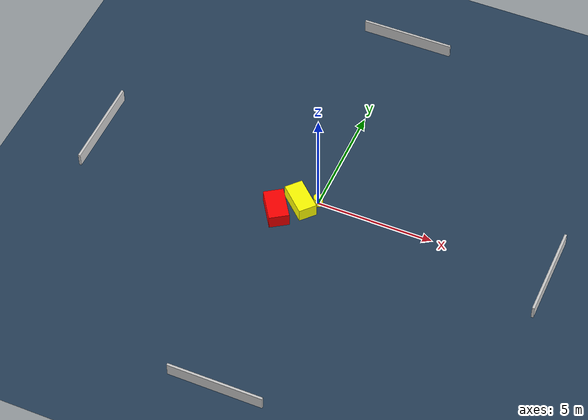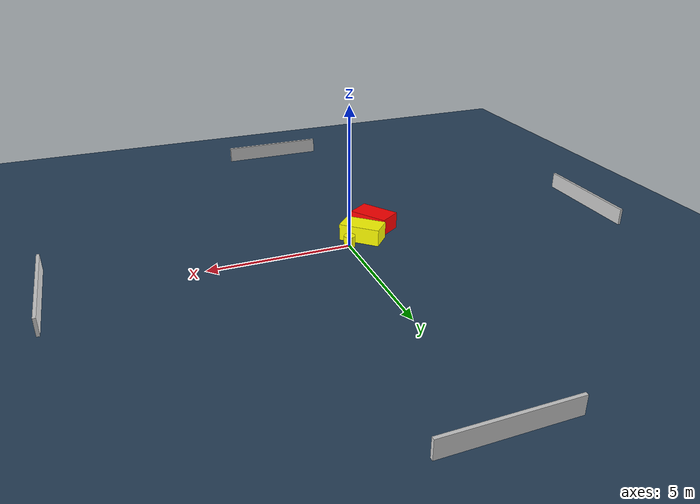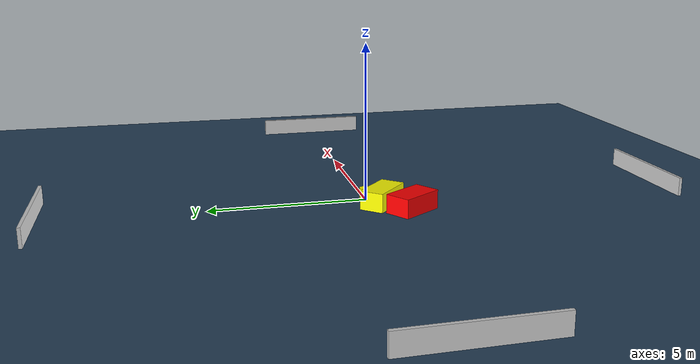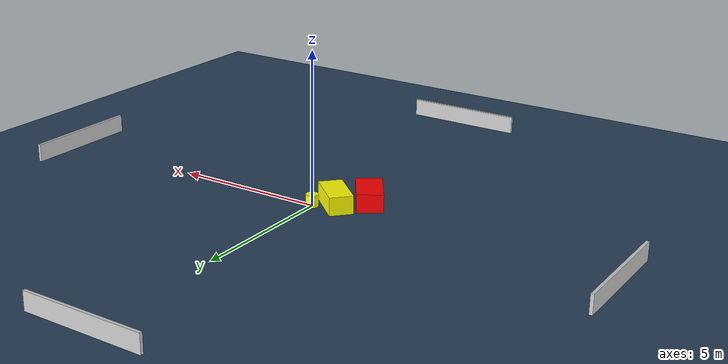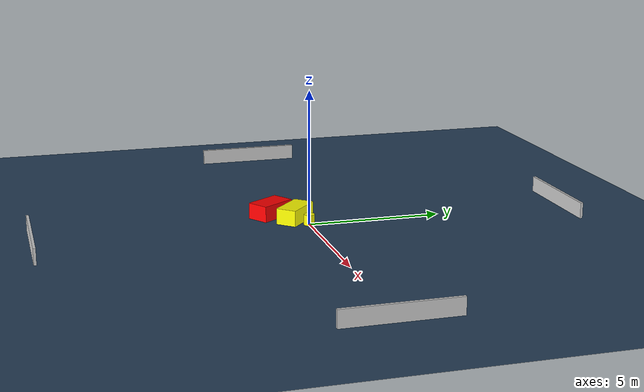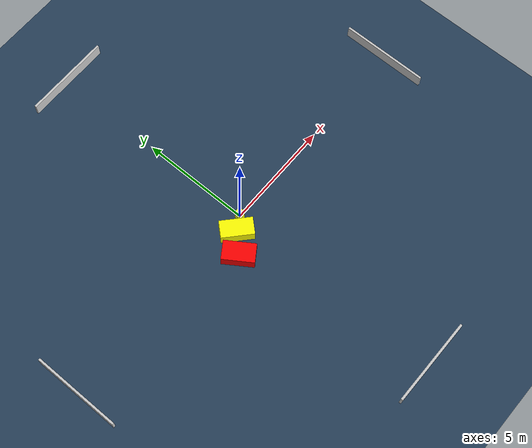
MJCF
<?xml version="1.0" ?>
<mujoco model="generated_environment">
  <option timestep="0.01" integrator="RK4" cone="elliptic"/>
  <default>
    <geom density="1"/>
  </default>
  <asset>
    <texture builtin="gradient" height="3072" name="skybox" rgb1="0.3 0.5 0.7" rgb2="0 0 0" type="skybox" width="512"/>
    <texture builtin="checker" height="300" name="groundplane" rgb1="0.2 0.3 0.4" rgb2="0.1 0.2 0.3" type="2d" width="300"/>
    <material name="groundplane" reflectance="0.2" texrepeat="5 5" texture="groundplane"/>
  </asset>
  <worldbody>
    <light dir="0 0 -1" directional="true" pos="0 0 1.5"/>
    <geom condim="3" friction="0.5 0.005 0.001" material="groundplane" name="floor" pos="0 0 0" size="0 0 0.05" type="plane"/>
    <body name="walls">
      <geom name="wall_1" condim="4" pos="-10.0 0.0 0.3" rgba="0.800000011920929 0.800000011920929 0.800000011920929 1.0" size="0.05 2.0 0.3" type="box"/>
      <geom name="wall_2" condim="4" pos="10.0 0.0 0.3" rgba="0.800000011920929 0.800000011920929 0.800000011920929 1.0" size="0.05 2.0 0.3" type="box"/>
      <geom name="wall_3" condim="4" pos="0.0 -10.0 0.3" rgba="0.800000011920929 0.800000011920929 0.800000011920929 1.0" size="2.0 0.05 0.3" type="box"/>
      <geom name="wall_4" condim="4" pos="0.0 10.0 0.3" rgba="0.800000011920929 0.800000011920929 0.800000011920929 1.0" size="2.0 0.05 0.3" type="box"/>
    </body>
    <body name="robot">
      <joint name="joint_x" type="slide" pos="0 0 0" axis="1 0 0"/>
      <joint name="joint_y" type="slide" pos="0 0 0" axis="0 1 0"/>
      <geom name="robot" type="cylinder" pos="0.0 0.0 0.2" size="0.2 0.2 0.0" mass="5.0" friction="1.0 0.005 0.0001" condim="4" rgba="1.0 1.0 0.0 1.0"/>
    </body>
    <body name="obstacle_1_movable">
      <geom name="obstacle_1_movable" condim="4" pos="-0.6353942619883682 -0.37186894020696426 0.3" euler="0 0 317.60762217751505" friction="0.0 0.005 0.001" rgba="1.0 1.0 0.0 1.0" size="0.7266447313612434 0.38836522616632885 0.3" type="box" mass="0.1"/>
      <joint type="free"/>
    </body>
    <body name="obstacle_2_static">
      <geom name="obstacle_2_static" condim="4" pos="-1.3937488371385918 -1.124710270994862 0.3" euler="0 0 33.60495926600967" friction="0.0 0.005 0.001" rgba="1.0 0.0 0.0 1.0" size="0.42616214820952397 0.7136878367742703 0.3" type="box"/>
    </body>
  </worldbody>
  <actuator>
    <motor name="actuator_x" joint="joint_x" gear="1" ctrlrange="-1 1"/>
    <motor name="actuator_y" joint="joint_y" gear="1" ctrlrange="-1 1"/>
  </actuator>
</mujoco>
